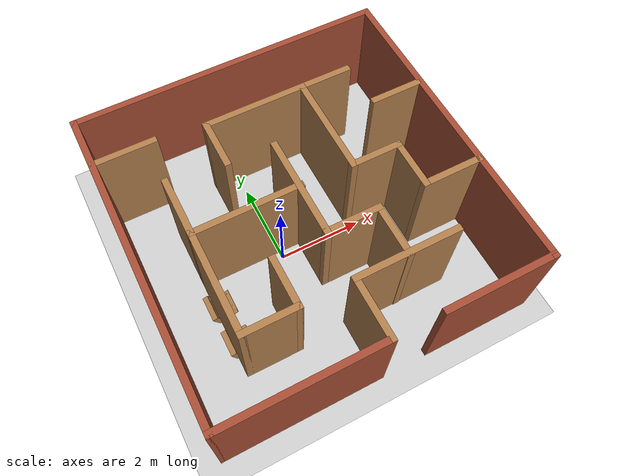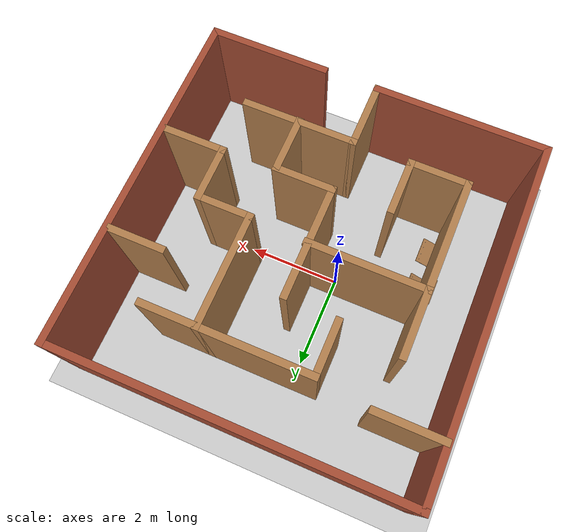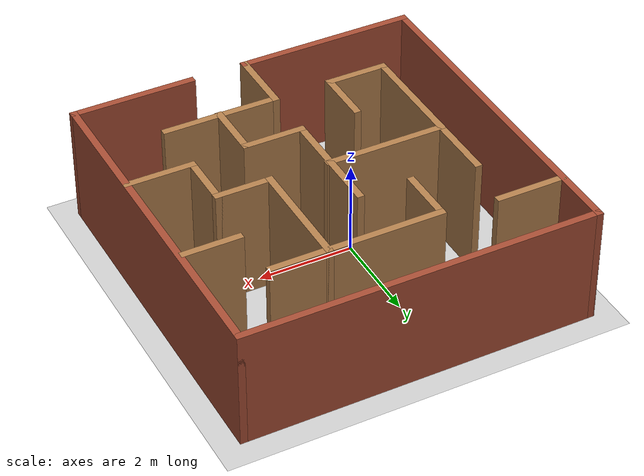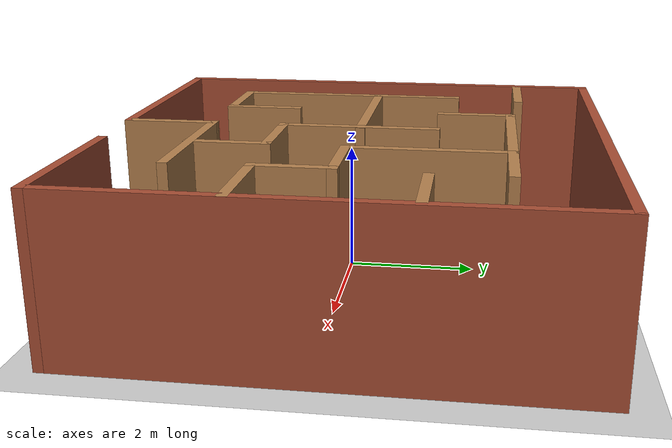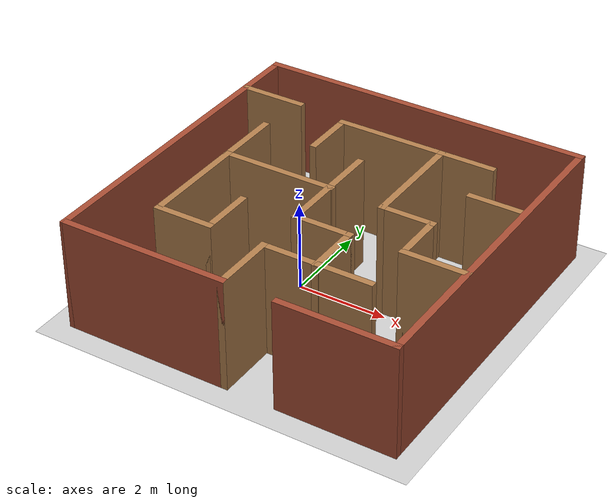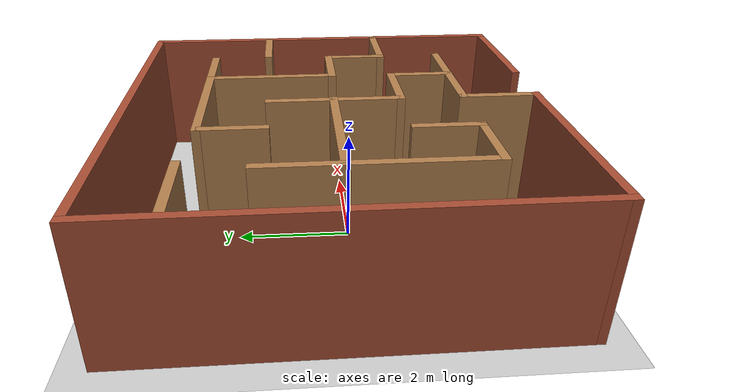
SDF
<sdf version="1.7">
 <world name="default">
  <light name="sun" type="directional">
   <pose>0 0 10 0 -0 0</pose>
   <diffuse>0.8 0.8 0.8 1</diffuse>
   <specular>0.2 0.2 0.2 1</specular>
   <attenuation>
    <range>1000</range>
    <constant>0.9</constant>
    <linear>0.01</linear>
    <quadratic>0.001</quadratic>
   </attenuation>
   <direction>-0.5 0.1 -0.9</direction>
   <spot><inner_angle>0</inner_angle><outer_angle>0</outer_angle><falloff>0</falloff></spot>
  </light>
  <model name="ground_plane">
   <static>1</static>
   <link name="link">
    <collision name="collision">
     <geometry><plane><normal>0 0 1</normal><size>100 100</size></plane></geometry>
     <surface><friction><ode><mu>100</mu><mu2>50</mu2></ode></friction></surface>
    </collision>
    <visual name="visual">
     <cast_shadows>0</cast_shadows>
     <geometry><plane><normal>0 0 1</normal><size>100 100</size></plane></geometry>
     <material>
      <script><uri>file://media/materials/scripts/gazebo.material</uri><name>Gazebo/Grey</name></script>
     </material>
    </visual>
   </link>
  </model>
  <gravity>0 0 -9.8</gravity>
  <magnetic_field>6e-06 2.3e-05 -4.2e-05</magnetic_field>
  <atmosphere type="adiabatic"/>
  <physics type="ode">
   <max_step_size>0.001</max_step_size>
   <real_time_factor>1</real_time_factor>
   <real_time_update_rate>1000</real_time_update_rate>
  </physics>
  <scene><ambient>0.4 0.4 0.4 1</ambient><background>0.7 0.7 0.7 1</background><shadows>1</shadows></scene>
  <audio><device>default</device></audio>
  <spherical_coordinates>
   <surface_model>EARTH_WGS84</surface_model>
   <latitude_deg>0</latitude_deg>
   <longitude_deg>0</longitude_deg>
   <elevation>0</elevation>
   <heading_deg>0</heading_deg>
  </spherical_coordinates>
  <model name="maze">
   <pose>0.591218 0.205771 0 0 -0 0</pose>
   <link name="Wall_10">
    <collision name="Wall_10_Collision">
     <geometry><box><size>1.5 0.15 2.5</size></box></geometry>
     <pose>0 0 1.25 0 -0 0</pose>
    </collision>
    <visual name="Wall_10_Visual">
     <pose>0 0 1.25 0 -0 0</pose>
     <geometry><box><size>1.5 0.15 2.5</size></box></geometry>
     <material>
      <script><uri>file://media/materials/scripts/gazebo.material</uri><name>Gazebo/Wood</name></script>
      <ambient>0.996078 0.47451 0.0196078 1</ambient>
     </material>
     <meta><layer>0</layer></meta>
    </visual>
    <pose>-0.025 -3 0 0 -0 1.5708</pose>
   </link>
   <link name="Wall_11">
    <collision name="Wall_11_Collision">
     <geometry><box><size>2.5 0.15 2.5</size></box></geometry>
     <pose>0 0 1.25 0 -0 0</pose>
    </collision>
    <visual name="Wall_11_Visual">
     <pose>0 0 1.25 0 -0 0</pose>
     <geometry><box><size>2.5 0.15 2.5</size></box></geometry>
     <material>
      <script><uri>file://media/materials/scripts/gazebo.material</uri><name>Gazebo/Wood</name></script>
      <ambient>0.996078 0.47451 0.0196078 1</ambient>
     </material>
     <meta><layer>0</layer></meta>
    </visual>
    <pose>1.15 -2.325 0 0 -0 0</pose>
   </link>
   <link name="Wall_14">
    <collision name="Wall_14_Collision">
     <geometry><box><size>1.30247 0.15 2.5</size></box></geometry>
     <pose>0 0 1.25 0 -0 0</pose>
    </collision>
    <visual name="Wall_14_Visual">
     <pose>0 0 1.25 0 -0 0</pose>
     <geometry><box><size>1.30247 0.15 2.5</size></box></geometry>
     <material>
      <script><uri>file://media/materials/scripts/gazebo.material</uri><name>Gazebo/Wood</name></script>
      <ambient>0.996078 0.47451 0.0196078 1</ambient>
     </material>
     <meta><layer>0</layer></meta>
    </visual>
    <pose>1.16975 -1.76535 0 0 -0 1.5708</pose>
   </link>
   <link name="Wall_15">
    <collision name="Wall_15_Collision">
     <geometry><box><size>1.35 0.15 2.5</size></box></geometry>
     <pose>0 0 1.25 0 -0 0</pose>
    </collision>
    <visual name="Wall_15_Visual">
     <pose>0 0 1.25 0 -0 0</pose>
     <geometry><box><size>1.35 0.15 2.5</size></box></geometry>
     <material>
      <script><uri>file://media/materials/scripts/gazebo.material</uri><name>Gazebo/Wood</name></script>
      <ambient>0.996078 0.47451 0.0196078 1</ambient>
     </material>
     <meta><layer>0</layer></meta>
    </visual>
    <pose>0.569747 -1.18911 0 0 -0 3.14159</pose>
   </link>
   <link name="Wall_17">
    <collision name="Wall_17_Collision">
     <geometry><box><size>2.5 0.15 2.5</size></box></geometry>
     <pose>0 0 1.25 0 -0 0</pose>
    </collision>
    <visual name="Wall_17_Visual">
     <pose>0 0 1.25 0 -0 0</pose>
     <geometry><box><size>2.5 0.15 2.5</size></box></geometry>
     <material>
      <script><uri>file://media/materials/scripts/gazebo.material</uri><name>Gazebo/Wood</name></script>
      <ambient>0.996078 0.47451 0.0196078 1</ambient>
     </material>
     <meta><layer>0</layer></meta>
    </visual>
    <pose>-0.030253 -0.014111 0 0 -0 1.5708</pose>
   </link>
   <link name="Wall_19">
    <collision name="Wall_19_Collision">
     <geometry><box><size>2.6 0.15 2.5</size></box></geometry>
     <pose>0 0 1.25 0 -0 0</pose>
    </collision>
    <visual name="Wall_19_Visual">
     <pose>0 0 1.25 0 -0 0</pose>
     <geometry><box><size>2.6 0.15 2.5</size></box></geometry>
     <material>
      <script><uri>file://media/materials/scripts/gazebo.material</uri><name>Gazebo/Wood</name></script>
      <ambient>0.996078 0.47451 0.0196078 1</ambient>
     </material>
     <meta><layer>0</layer></meta>
    </visual>
    <pose>-1.22709 0.019577 0 0 -0 3.14159</pose>
   </link>
   <link name="Wall_2">
    <collision name="Wall_2_Collision">
     <geometry><box><size>7.5 0.15 2.5</size></box></geometry>
     <pose>0 0 1.25 0 -0 0</pose>
    </collision>
    <visual name="Wall_2_Visual">
     <pose>0 0 1.25 0 -0 0</pose>
     <geometry><box><size>7.5 0.15 2.5</size></box></geometry>
     <material>
      <script><uri>file://media/materials/scripts/gazebo.material</uri><name>Gazebo/Bricks</name></script>
      <ambient>1 1 1 1</ambient>
     </material>
     <meta><layer>0</layer></meta>
    </visual>
    <pose>3.675 -0 0 0 -0 -1.5708</pose>
   </link>
   <link name="Wall_21">
    <collision name="Wall_21_Collision">
     <geometry><box><size>1.5 0.15 2.5</size></box></geometry>
     <pose>0 0 1.25 0 -0 0</pose>
    </collision>
    <visual name="Wall_21_Visual">
     <pose>0 0 1.25 0 -0 0</pose>
     <geometry><box><size>1.5 0.15 2.5</size></box></geometry>
     <material>
      <script><uri>file://media/materials/scripts/gazebo.material</uri><name>Gazebo/Wood</name></script>
      <ambient>0.996078 0.47451 0.0196078 1</ambient>
     </material>
     <meta><layer>0</layer></meta>
    </visual>
    <pose>-2.45209 0.694577 0 0 -0 1.5708</pose>
   </link>
   <link name="Wall_23">
    <collision name="Wall_23_Collision">
     <geometry><box><size>2.5 0.15 2.5</size></box></geometry>
     <pose>0 0 1.25 0 -0 0</pose>
    </collision>
    <visual name="Wall_23_Visual">
     <pose>0 0 1.25 0 -0 0</pose>
     <geometry><box><size>2.5 0.15 2.5</size></box></geometry>
     <material>
      <script><uri>file://media/materials/scripts/gazebo.material</uri><name>Gazebo/Wood</name></script>
      <ambient>0.996078 0.47451 0.0196078 1</ambient>
     </material>
     <meta><layer>0</layer></meta>
    </visual>
    <pose>-2.45209 -1.15542 0 0 -0 -1.5708</pose>
   </link>
   <link name="Wall_24">
    <collision name="Wall_24_Collision">
     <geometry><box><size>1.35 0.15 2.5</size></box></geometry>
     <pose>0 0 1.25 0 -0 0</pose>
    </collision>
    <visual name="Wall_24_Visual">
     <pose>0 0 1.25 0 -0 0</pose>
     <geometry><box><size>1.35 0.15 2.5</size></box></geometry>
     <material>
      <script><uri>file://media/materials/scripts/gazebo.material</uri><name>Gazebo/Wood</name></script>
      <ambient>0.996078 0.47451 0.0196078 1</ambient>
     </material>
     <meta><layer>0</layer></meta>
    </visual>
    <pose>-1.85209 -2.33042 0 0 -0 0</pose>
   </link>
   <link name="Wall_26">
    <collision name="Wall_26_Collision">
     <geometry><box><size>1.25 0.15 2.5</size></box></geometry>
     <pose>0 0 1.25 0 -0 0</pose>
    </collision>
    <visual name="Wall_26_Visual">
     <pose>0 0 1.25 0 -0 0</pose>
     <geometry><box><size>1.25 0.15 2.5</size></box></geometry>
     <material>
      <script><uri>file://media/materials/scripts/gazebo.material</uri><name>Gazebo/Wood</name></script>
      <ambient>0.996078 0.47451 0.0196078 1</ambient>
     </material>
     <meta><layer>0</layer></meta>
    </visual>
    <pose>-1.25209 -1.78042 0 0 -0 1.5708</pose>
   </link>
   <link name="Wall_28">
    <collision name="Wall_28_Collision">
     <geometry><box><size>1.5 0.15 2.5</size></box></geometry>
     <pose>0 0 1.25 0 -0 0</pose>
    </collision>
    <visual name="Wall_28_Visual">
     <pose>0 0 1.25 0 -0 0</pose>
     <geometry><box><size>1.5 0.15 2.5</size></box></geometry>
     <material>
      <script><uri>file://media/materials/scripts/gazebo.material</uri><name>Gazebo/Wood</name></script>
      <ambient>0.996078 0.47451 0.0196078 1</ambient>
     </material>
     <meta><layer>0</layer></meta>
    </visual>
    <pose>2.99583 -1.13477 0 0 -0 3.14159</pose>
   </link>
   <link name="Wall_29">
    <collision name="Wall_29_Collision">
     <geometry><box><size>1.25 0.15 2.5</size></box></geometry>
     <pose>0 0 1.25 0 -0 0</pose>
    </collision>
    <visual name="Wall_29_Visual">
     <pose>0 0 1.25 0 -0 0</pose>
     <geometry><box><size>1.25 0.15 2.5</size></box></geometry>
     <material>
      <script><uri>file://media/materials/scripts/gazebo.material</uri><name>Gazebo/Wood</name></script>
      <ambient>0.996078 0.47451 0.0196078 1</ambient>
     </material>
     <meta><layer>0</layer></meta>
    </visual>
    <pose>2.32083 -0.584767 0 0 -0 1.5708</pose>
   </link>
   <link name="Wall_30">
    <collision name="Wall_30_Collision">
     <geometry><box><size>1.25 0.15 2.5</size></box></geometry>
     <pose>0 0 1.25 0 -0 0</pose>
    </collision>
    <visual name="Wall_30_Visual">
     <pose>0 0 1.25 0 -0 0</pose>
     <geometry><box><size>1.25 0.15 2.5</size></box></geometry>
     <material>
      <script><uri>file://media/materials/scripts/gazebo.material</uri><name>Gazebo/Wood</name></script>
      <ambient>0.996078 0.47451 0.0196078 1</ambient>
     </material>
     <meta><layer>0</layer></meta>
    </visual>
    <pose>1.77083 -0.034767 0 0 -0 3.14159</pose>
   </link>
   <link name="Wall_31">
    <collision name="Wall_31_Collision">
     <geometry><box><size>2.5 0.15 2.5</size></box></geometry>
     <pose>0 0 1.25 0 -0 0</pose>
    </collision>
    <visual name="Wall_31_Visual">
     <pose>0 0 1.25 0 -0 0</pose>
     <geometry><box><size>2.5 0.15 2.5</size></box></geometry>
     <material>
      <script><uri>file://media/materials/scripts/gazebo.material</uri><name>Gazebo/Wood</name></script>
      <ambient>0.996078 0.47451 0.0196078 1</ambient>
     </material>
     <meta><layer>0</layer></meta>
    </visual>
    <pose>1.22083 1.14023 0 0 -0 1.5708</pose>
   </link>
   <link name="Wall_32">
    <collision name="Wall_32_Collision">
     <geometry><box><size>2.5 0.15 2.5</size></box></geometry>
     <pose>0 0 1.25 0 -0 0</pose>
    </collision>
    <visual name="Wall_32_Visual">
     <pose>0 0 1.25 0 -0 0</pose>
     <geometry><box><size>2.5 0.15 2.5</size></box></geometry>
     <material>
      <script><uri>file://media/materials/scripts/gazebo.material</uri><name>Gazebo/Wood</name></script>
      <ambient>0.996078 0.47451 0.0196078 1</ambient>
     </material>
     <meta><layer>0</layer></meta>
    </visual>
    <pose>0.045826 2.31523 0 0 -0 3.14159</pose>
   </link>
   <link name="Wall_33">
    <collision name="Wall_33_Collision">
     <geometry><box><size>1.25 0.15 2.5</size></box></geometry>
     <pose>0 0 1.25 0 -0 0</pose>
    </collision>
    <visual name="Wall_33_Visual">
     <pose>0 0 1.25 0 -0 0</pose>
     <geometry><box><size>1.25 0.15 2.5</size></box></geometry>
     <material>
      <script><uri>file://media/materials/scripts/gazebo.material</uri><name>Gazebo/Wood</name></script>
      <ambient>0.996078 0.47451 0.0196078 1</ambient>
     </material>
     <meta><layer>0</layer></meta>
    </visual>
    <pose>-1.12917 1.76523 0 0 -0 -1.5708</pose>
   </link>
   <link name="Wall_37">
    <collision name="Wall_37_Collision">
     <geometry><box><size>1.5 0.15 2.5</size></box></geometry>
     <pose>0 0 1.25 0 -0 0</pose>
    </collision>
    <visual name="Wall_37_Visual">
     <pose>0 0 1.25 0 -0 0</pose>
     <geometry><box><size>1.5 0.15 2.5</size></box></geometry>
     <material>
      <script><uri>file://media/materials/scripts/gazebo.material</uri><name>Gazebo/Wood</name></script>
      <ambient>0.996078 0.47451 0.0196078 1</ambient>
     </material>
     <meta><layer>0</layer></meta>
    </visual>
    <pose>-2.96502 2.46819 0 0 -0 0</pose>
   </link>
   <link name="Wall_39">
    <collision name="Wall_39_Collision">
     <geometry><box><size>1.3 0.15 2.5</size></box></geometry>
     <pose>0 0 1.25 0 -0 0</pose>
    </collision>
    <visual name="Wall_39_Visual">
     <pose>0 0 1.25 0 -0 0</pose>
     <geometry><box><size>1.3 0.15 2.5</size></box></geometry>
     <material>
      <script><uri>file://media/materials/scripts/gazebo.material</uri><name>Gazebo/Wood</name></script>
      <ambient>0.996078 0.47451 0.0196078 1</ambient>
     </material>
     <meta><layer>0</layer></meta>
    </visual>
    <pose>1.79583 2.31523 0 0 -0 0</pose>
   </link>
   <link name="Wall_4">
    <collision name="Wall_4_Collision">
     <geometry><box><size>7.5 0.15 2.5</size></box></geometry>
     <pose>0 0 1.25 0 -0 0</pose>
    </collision>
    <visual name="Wall_4_Visual">
     <pose>0 0 1.25 0 -0 0</pose>
     <geometry><box><size>7.5 0.15 2.5</size></box></geometry>
     <material>
      <script><uri>file://media/materials/scripts/gazebo.material</uri><name>Gazebo/Bricks</name></script>
      <ambient>1 1 1 1</ambient>
     </material>
     <meta><layer>0</layer></meta>
    </visual>
    <pose>-3.675 -0 0 0 -0 1.5708</pose>
   </link>
   <link name="Wall_41">
    <collision name="Wall_41_Collision">
     <geometry><box><size>1.25 0.15 2.5</size></box></geometry>
     <pose>0 0 1.25 0 -0 0</pose>
    </collision>
    <visual name="Wall_41_Visual">
     <pose>0 0 1.25 0 -0 0</pose>
     <geometry><box><size>1.25 0.15 2.5</size></box></geometry>
     <material>
      <script><uri>file://media/materials/scripts/gazebo.material</uri><name>Gazebo/Wood</name></script>
      <ambient>0.996078 0.47451 0.0196078 1</ambient>
     </material>
     <meta><layer>0</layer></meta>
    </visual>
    <pose>3.03338 1.22639 0 0 -0 3.14159</pose>
   </link>
   <link name="Wall_47">
    <collision name="Wall_47_Collision">
     <geometry><box><size>7.5 0.15 2.5</size></box></geometry>
     <pose>0 0 1.25 0 -0 0</pose>
    </collision>
    <visual name="Wall_47_Visual">
     <pose>0 0 1.25 0 -0 0</pose>
     <geometry><box><size>7.5 0.15 2.5</size></box></geometry>
     <material>
      <script><uri>file://media/materials/scripts/gazebo.material</uri><name>Gazebo/Bricks</name></script>
      <ambient>1 1 1 1</ambient>
     </material>
     <meta><layer>0</layer></meta>
    </visual>
    <pose>0 3.675 0 0 -0 0</pose>
   </link>
   <link name="Wall_6">
    <collision name="Wall_6_Collision">
     <geometry><box><size>3.8 0.15 2.5</size></box></geometry>
     <pose>0 0 1.25 0 -0 0</pose>
    </collision>
    <visual name="Wall_6_Visual">
     <pose>0 0 1.25 0 -0 0</pose>
     <geometry><box><size>3.8 0.15 2.5</size></box></geometry>
     <material>
      <script><uri>file://media/materials/scripts/gazebo.material</uri><name>Gazebo/Bricks</name></script>
      <ambient>1 1 1 1</ambient>
     </material>
     <meta><layer>0</layer></meta>
    </visual>
    <pose>-1.85 -3.675 0 0 -0 0</pose>
   </link>
   <link name="Wall_8">
    <collision name="Wall_8_Collision">
     <geometry><box><size>2.65 0.15 2.5</size></box></geometry>
     <pose>0 0 1.25 0 -0 0</pose>
    </collision>
    <visual name="Wall_8_Visual">
     <pose>0 0 1.25 0 -0 0</pose>
     <geometry><box><size>2.65 0.15 2.5</size></box></geometry>
     <material>
      <script><uri>file://media/materials/scripts/gazebo.material</uri><name>Gazebo/Bricks</name></script>
      <ambient>1 1 1 1</ambient>
     </material>
     <meta><layer>0</layer></meta>
    </visual>
    <pose>2.425 -3.675 0 0 -0 3.14159</pose>
   </link>
   <static>1</static>
  </model>
  <model name="wooden_case">
   <link name="base">
    <pose>0 0 0.024 0 -0 0</pose>
    <inertial>
     <pose>-0.022184 0 0.171592 0 -0 0</pose>
     <mass>3.96264</mass>
     <inertia>
      <ixx>0.213536</ixx>
      <ixy>0</ixy>
      <ixz>0.000779377</ixz>
      <iyy>0.0708943</iyy>
      <iyz>0</iyz>
      <izz>0.154604</izz>
     </inertia>
    </inertial>
    <collision name="collision_back">
     <pose>-0.053975 0 0.1778 0 -0 0</pose>
     <geometry><box><size>0.01905 0.5461 0.3175</size></box></geometry>
     <surface>
      <contact>
       <poissons_ratio>0.347</poissons_ratio>
       <elastic_modulus>8.8e+09</elastic_modulus>
       <ode><kp>100000</kp><kd>100</kd><max_vel>100</max_vel><min_depth>0.001</min_depth></ode>
      </contact>
      <friction>
       <torsional>
        <coefficient>1</coefficient>
        <use_patch_radius>0</use_patch_radius>
        <surface_radius>0.01</surface_radius>
       </torsional>
      </friction>
     </surface>
    </collision>
    <visual name="visual_back">
     <pose>-0.053975 0 0.1778 0 -0 0</pose>
     <geometry><box><size>0.01905 0.5461 0.3175</size></box></geometry>
     <material>
      <script><uri>file://media/materials/scripts/gazebo.material</uri><name>Gazebo/Wood</name></script>
     </material>
    </visual>
    <collision name="collision_bottom">
     <pose>0 0 0.009525 0 -0 0</pose>
     <geometry><box><size>0.127 0.5842 0.01905</size></box></geometry>
     <surface>
      <contact>
       <poissons_ratio>0.347</poissons_ratio>
       <elastic_modulus>8.8e+09</elastic_modulus>
       <ode><kp>100000</kp><kd>100</kd><max_vel>100</max_vel><min_depth>0.001</min_depth></ode>
      </contact>
      <friction>
       <torsional>
        <coefficient>1</coefficient>
        <use_patch_radius>0</use_patch_radius>
        <surface_radius>0.01</surface_radius>
       </torsional>
      </friction>
     </surface>
    </collision>
    <visual name="visual_bottom">
     <pose>0 0 0.009525 0 -0 0</pose>
     <geometry><box><size>0.127 0.5842 0.01905</size></box></geometry>
     <material>
      <script><uri>file://media/materials/scripts/gazebo.material</uri><name>Gazebo/Wood</name></script>
     </material>
    </visual>
    <collision name="collision_top">
     <pose>0 0 0.346075 0 -0 0</pose>
     <geometry><box><size>0.127 0.5842 0.01905</size></box></geometry>
     <surface>
      <contact>
       <poissons_ratio>0.347</poissons_ratio>
       <elastic_modulus>8.8e+09</elastic_modulus>
       <ode><kp>100000</kp><kd>100</kd><max_vel>100</max_vel><min_depth>0.001</min_depth></ode>
      </contact>
      <friction>
       <torsional>
        <coefficient>1</coefficient>
        <use_patch_radius>0</use_patch_radius>
        <surface_radius>0.01</surface_radius>
       </torsional>
      </friction>
     </surface>
    </collision>
    <visual name="visual_top">
     <pose>0 0 0.346075 0 -0 0</pose>
     <geometry><box><size>0.127 0.5842 0.01905</size></box></geometry>
     <material>
      <script><uri>file://media/materials/scripts/gazebo.material</uri><name>Gazebo/Wood</name></script>
     </material>
    </visual>
    <collision name="collision_left">
     <pose>0 -0.282575 0.1778 0 -0 0</pose>
     <geometry><box><size>0.127 0.01905 0.3175</size></box></geometry>
     <surface>
      <contact>
       <poissons_ratio>0.347</poissons_ratio>
       <elastic_modulus>8.8e+09</elastic_modulus>
       <ode><kp>100000</kp><kd>100</kd><max_vel>100</max_vel><min_depth>0.001</min_depth></ode>
      </contact>
      <friction>
       <torsional>
        <coefficient>1</coefficient>
        <use_patch_radius>0</use_patch_radius>
        <surface_radius>0.01</surface_radius>
       </torsional>
      </friction>
     </surface>
    </collision>
    <visual name="visual_left">
     <pose>0 -0.282575 0.1778 0 -0 0</pose>
     <geometry><box><size>0.127 0.01905 0.3175</size></box></geometry>
     <material>
      <script><uri>file://media/materials/scripts/gazebo.material</uri><name>Gazebo/Wood</name></script>
     </material>
    </visual>
    <collision name="collision_right">
     <pose>0 0.282575 0.1778 0 -0 0</pose>
     <geometry><box><size>0.127 0.01905 0.3175</size></box></geometry>
     <surface>
      <contact>
       <poissons_ratio>0.347</poissons_ratio>
       <elastic_modulus>8.8e+09</elastic_modulus>
       <ode><kp>100000</kp><kd>100</kd><max_vel>100</max_vel><min_depth>0.001</min_depth></ode>
      </contact>
      <friction>
       <torsional>
        <coefficient>1</coefficient>
        <use_patch_radius>0</use_patch_radius>
        <surface_radius>0.01</surface_radius>
       </torsional>
      </friction>
     </surface>
    </collision>
    <visual name="visual_right">
     <pose>0 0.282575 0.1778 0 -0 0</pose>
     <geometry><box><size>0.127 0.01905 0.3175</size></box></geometry>
     <material>
      <script><uri>file://media/materials/scripts/gazebo.material</uri><name>Gazebo/Wood</name></script>
     </material>
    </visual>
    <collision name="collision_block_left">
     <pose>0.0095 -0.2151 -0.012 0 -0 0</pose>
     <geometry><box><size>0.108 0.05 0.024</size></box></geometry>
     <surface>
      <contact>
       <poissons_ratio>0.347</poissons_ratio>
       <elastic_modulus>8.8e+09</elastic_modulus>
       <ode><kp>100000</kp><kd>100</kd><max_vel>100</max_vel><min_depth>0.001</min_depth></ode>
      </contact>
      <friction>
       <torsional>
        <coefficient>1</coefficient>
        <use_patch_radius>0</use_patch_radius>
        <surface_radius>0.01</surface_radius>
       </torsional>
      </friction>
     </surface>
    </collision>
    <visual name="visual_block_left">
     <pose>0.0095 -0.2151 -0.012 0 -0 0</pose>
     <geometry><box><size>0.108 0.05 0.024</size></box></geometry>
     <material>
      <script><uri>file://media/materials/scripts/gazebo.material</uri><name>Gazebo/Wood</name></script>
     </material>
    </visual>
    <collision name="collision_block_right">
     <pose>0.0095 0.2151 -0.012 0 -0 0</pose>
     <geometry><box><size>0.108 0.05 0.024</size></box></geometry>
     <surface>
      <contact>
       <poissons_ratio>0.347</poissons_ratio>
       <elastic_modulus>8.8e+09</elastic_modulus>
       <ode><kp>100000</kp><kd>100</kd><max_vel>100</max_vel><min_depth>0.001</min_depth></ode>
      </contact>
      <friction>
       <torsional>
        <coefficient>1</coefficient>
        <use_patch_radius>0</use_patch_radius>
        <surface_radius>0.01</surface_radius>
       </torsional>
      </friction>
     </surface>
    </collision>
    <visual name="visual_block_right">
     <pose>0.0095 0.2151 -0.012 0 -0 0</pose>
     <geometry><box><size>0.108 0.05 0.024</size></box></geometry>
     <material>
      <script><uri>file://media/materials/scripts/gazebo.material</uri><name>Gazebo/Wood</name></script>
     </material>
    </visual>
   </link>
   <link name="lid">
    <pose>0.243775 0 0.009525 0 -0 0</pose>
    <inertial>
     <mass>1.97874</mass>
     <inertia>
      <ixx>0.0563367</ixx>
      <ixy>0</ixy>
      <ixz>0</ixz>
      <iyy>0.020911</iyy>
      <iyz>0</iyz>
      <izz>0.0771281</izz>
     </inertia>
    </inertial>
    <collision name="collision">
     <geometry><box><size>0.3556 0.5842 0.01905</size></box></geometry>
     <surface>
      <contact>
       <poissons_ratio>0.347</poissons_ratio>
       <elastic_modulus>8.8e+09</elastic_modulus>
       <ode><kp>100000</kp><kd>100</kd><max_vel>100</max_vel><min_depth>0.001</min_depth></ode>
      </contact>
      <friction>
       <torsional>
        <coefficient>1</coefficient>
        <use_patch_radius>0</use_patch_radius>
        <surface_radius>0.01</surface_radius>
       </torsional>
      </friction>
     </surface>
    </collision>
    <visual name="visual">
     <geometry><box><size>0.3556 0.5842 0.01905</size></box></geometry>
     <material>
      <script><uri>file://media/materials/scripts/gazebo.material</uri><name>Gazebo/Wood</name></script>
     </material>
    </visual>
    <visual name="tee_nut_1">
     <pose>0.122 -0.216 0 0 -0 0</pose>
     <geometry><cylinder><radius>0.00635</radius><length>0.0192405</length></cylinder></geometry>
     <material>
      <script><uri>file://media/materials/scripts/gazebo.material</uri><name>Gazebo/Grey</name></script>
     </material>
    </visual>
    <visual name="tee_nut_2">
     <pose>0.122 -0.088 0 0 -0 0</pose>
     <geometry><cylinder><radius>0.00635</radius><length>0.0192405</length></cylinder></geometry>
     <material>
      <script><uri>file://media/materials/scripts/gazebo.material</uri><name>Gazebo/Grey</name></script>
     </material>
    </visual>
    <visual name="tee_nut_3">
     <pose>0.122 0.088 0 0 -0 0</pose>
     <geometry><cylinder><radius>0.00635</radius><length>0.0192405</length></cylinder></geometry>
     <material>
      <script><uri>file://media/materials/scripts/gazebo.material</uri><name>Gazebo/Grey</name></script>
     </material>
    </visual>
    <visual name="tee_nut_4">
     <pose>0.122 0.216 0 0 -0 0</pose>
     <geometry><cylinder><radius>0.00635</radius><length>0.0192405</length></cylinder></geometry>
     <material>
      <script><uri>file://media/materials/scripts/gazebo.material</uri><name>Gazebo/Grey</name></script>
     </material>
    </visual>
   </link>
   <joint name="lid_hinge" type="revolute">
    <pose>-0.1778 0 0.01905 0 -0 0</pose>
    <parent>base</parent>
    <child>lid</child>
    <axis>
     <xyz>0 1 0</xyz>
     <limit><upper>0.523599</upper><lower>-1.5708</lower></limit>
     <dynamics><spring_reference>0</spring_reference><spring_stiffness>0</spring_stiffness></dynamics>
    </axis>
   </joint>
   <pose>-1.89487 -1.43787 -0.016304 0.000242 -0.327019 -0.000121</pose>
  </model>
  <model name="wooden_case_metal_peg">
   <frame name="wooden_case::__model__" attached_to="wooden_case::base">
    <pose relative_to="__model__">0 0 0 0 -0 0</pose>
   </frame>
   <link name="wooden_case::base">
    <pose relative_to="wooden_case::__model__">0 0 0.024 0 -0 0</pose>
    <inertial>
     <pose>-0.022184 0 0.171592 0 -0 0</pose>
     <mass>3.96264</mass>
     <inertia>
      <ixx>0.213536</ixx>
      <ixy>0</ixy>
      <ixz>0.000779377</ixz>
      <iyy>0.0708943</iyy>
      <iyz>0</iyz>
      <izz>0.154604</izz>
     </inertia>
    </inertial>
    <collision name="collision_back">
     <pose>-0.053975 0 0.1778 0 -0 0</pose>
     <geometry><box><size>0.01905 0.5461 0.3175</size></box></geometry>
     <surface>
      <contact>
       <poissons_ratio>0.347</poissons_ratio>
       <elastic_modulus>8.8e+09</elastic_modulus>
       <ode><kp>100000</kp><kd>100</kd><max_vel>100</max_vel><min_depth>0.001</min_depth></ode>
      </contact>
      <friction>
       <torsional>
        <coefficient>1</coefficient>
        <use_patch_radius>0</use_patch_radius>
        <surface_radius>0.01</surface_radius>
       </torsional>
      </friction>
     </surface>
    </collision>
    <visual name="visual_back">
     <pose>-0.053975 0 0.1778 0 -0 0</pose>
     <geometry><box><size>0.01905 0.5461 0.3175</size></box></geometry>
     <material>
      <script><uri>file://media/materials/scripts/gazebo.material</uri><name>Gazebo/Wood</name></script>
     </material>
    </visual>
    <collision name="collision_bottom">
     <pose>0 0 0.009525 0 -0 0</pose>
     <geometry><box><size>0.127 0.5842 0.01905</size></box></geometry>
     <surface>
      <contact>
       <poissons_ratio>0.347</poissons_ratio>
       <elastic_modulus>8.8e+09</elastic_modulus>
       <ode><kp>100000</kp><kd>100</kd><max_vel>100</max_vel><min_depth>0.001</min_depth></ode>
      </contact>
      <friction>
       <torsional>
        <coefficient>1</coefficient>
        <use_patch_radius>0</use_patch_radius>
        <surface_radius>0.01</surface_radius>
       </torsional>
      </friction>
     </surface>
    </collision>
    <visual name="visual_bottom">
     <pose>0 0 0.009525 0 -0 0</pose>
     <geometry><box><size>0.127 0.5842 0.01905</size></box></geometry>
     <material>
      <script><uri>file://media/materials/scripts/gazebo.material</uri><name>Gazebo/Wood</name></script>
     </material>
    </visual>
    <collision name="collision_top">
     <pose>0 0 0.346075 0 -0 0</pose>
     <geometry><box><size>0.127 0.5842 0.01905</size></box></geometry>
     <surface>
      <contact>
       <poissons_ratio>0.347</poissons_ratio>
       <elastic_modulus>8.8e+09</elastic_modulus>
       <ode><kp>100000</kp><kd>100</kd><max_vel>100</max_vel><min_depth>0.001</min_depth></ode>
      </contact>
      <friction>
       <torsional>
        <coefficient>1</coefficient>
        <use_patch_radius>0</use_patch_radius>
        <surface_radius>0.01</surface_radius>
       </torsional>
      </friction>
     </surface>
    </collision>
    <visual name="visual_top">
     <pose>0 0 0.346075 0 -0 0</pose>
     <geometry><box><size>0.127 0.5842 0.01905</size></box></geometry>
     <material>
      <script><uri>file://media/materials/scripts/gazebo.material</uri><name>Gazebo/Wood</name></script>
     </material>
    </visual>
    <collision name="collision_left">
     <pose>0 -0.282575 0.1778 0 -0 0</pose>
     <geometry><box><size>0.127 0.01905 0.3175</size></box></geometry>
     <surface>
      <contact>
       <poissons_ratio>0.347</poissons_ratio>
       <elastic_modulus>8.8e+09</elastic_modulus>
       <ode><kp>100000</kp><kd>100</kd><max_vel>100</max_vel><min_depth>0.001</min_depth></ode>
      </contact>
      <friction>
       <torsional>
        <coefficient>1</coefficient>
        <use_patch_radius>0</use_patch_radius>
        <surface_radius>0.01</surface_radius>
       </torsional>
      </friction>
     </surface>
    </collision>
    <visual name="visual_left">
     <pose>0 -0.282575 0.1778 0 -0 0</pose>
     <geometry><box><size>0.127 0.01905 0.3175</size></box></geometry>
     <material>
      <script><uri>file://media/materials/scripts/gazebo.material</uri><name>Gazebo/Wood</name></script>
     </material>
    </visual>
    <collision name="collision_right">
     <pose>0 0.282575 0.1778 0 -0 0</pose>
     <geometry><box><size>0.127 0.01905 0.3175</size></box></geometry>
     <surface>
      <contact>
       <poissons_ratio>0.347</poissons_ratio>
       <elastic_modulus>8.8e+09</elastic_modulus>
       <ode><kp>100000</kp><kd>100</kd><max_vel>100</max_vel><min_depth>0.001</min_depth></ode>
      </contact>
      <friction>
       <torsional>
        <coefficient>1</coefficient>
        <use_patch_radius>0</use_patch_radius>
        <surface_radius>0.01</surface_radius>
       </torsional>
      </friction>
     </surface>
    </collision>
    <visual name="visual_right">
     <pose>0 0.282575 0.1778 0 -0 0</pose>
     <geometry><box><size>0.127 0.01905 0.3175</size></box></geometry>
     <material>
      <script><uri>file://media/materials/scripts/gazebo.material</uri><name>Gazebo/Wood</name></script>
     </material>
    </visual>
    <collision name="collision_block_left">
     <pose>0.0095 -0.2151 -0.012 0 -0 0</pose>
     <geometry><box><size>0.108 0.05 0.024</size></box></geometry>
     <surface>
      <contact>
       <poissons_ratio>0.347</poissons_ratio>
       <elastic_modulus>8.8e+09</elastic_modulus>
       <ode><kp>100000</kp><kd>100</kd><max_vel>100</max_vel><min_depth>0.001</min_depth></ode>
      </contact>
      <friction>
       <torsional>
        <coefficient>1</coefficient>
        <use_patch_radius>0</use_patch_radius>
        <surface_radius>0.01</surface_radius>
       </torsional>
      </friction>
     </surface>
    </collision>
    <visual name="visual_block_left">
     <pose>0.0095 -0.2151 -0.012 0 -0 0</pose>
     <geometry><box><size>0.108 0.05 0.024</size></box></geometry>
     <material>
      <script><uri>file://media/materials/scripts/gazebo.material</uri><name>Gazebo/Wood</name></script>
     </material>
    </visual>
    <collision name="collision_block_right">
     <pose>0.0095 0.2151 -0.012 0 -0 0</pose>
     <geometry><box><size>0.108 0.05 0.024</size></box></geometry>
     <surface>
      <contact>
       <poissons_ratio>0.347</poissons_ratio>
       <elastic_modulus>8.8e+09</elastic_modulus>
       <ode><kp>100000</kp><kd>100</kd><max_vel>100</max_vel><min_depth>0.001</min_depth></ode>
      </contact>
      <friction>
       <torsional>
        <coefficient>1</coefficient>
        <use_patch_radius>0</use_patch_radius>
        <surface_radius>0.01</surface_radius>
       </torsional>
      </friction>
     </surface>
    </collision>
    <visual name="visual_block_right">
     <pose>0.0095 0.2151 -0.012 0 -0 0</pose>
     <geometry><box><size>0.108 0.05 0.024</size></box></geometry>
     <material>
      <script><uri>file://media/materials/scripts/gazebo.material</uri><name>Gazebo/Wood</name></script>
     </material>
    </visual>
   </link>
   <link name="wooden_case::lid">
    <pose relative_to="wooden_case::__model__">0.243775 0 0.009525 0 -0 0</pose>
    <inertial>
     <mass>1.97874</mass>
     <inertia>
      <ixx>0.0563367</ixx>
      <ixy>0</ixy>
      <ixz>0</ixz>
      <iyy>0.020911</iyy>
      <iyz>0</iyz>
      <izz>0.0771281</izz>
     </inertia>
    </inertial>
    <collision name="collision">
     <geometry><box><size>0.3556 0.5842 0.01905</size></box></geometry>
     <surface>
      <contact>
       <poissons_ratio>0.347</poissons_ratio>
       <elastic_modulus>8.8e+09</elastic_modulus>
       <ode><kp>100000</kp><kd>100</kd><max_vel>100</max_vel><min_depth>0.001</min_depth></ode>
      </contact>
      <friction>
       <torsional>
        <coefficient>1</coefficient>
        <use_patch_radius>0</use_patch_radius>
        <surface_radius>0.01</surface_radius>
       </torsional>
      </friction>
     </surface>
    </collision>
    <visual name="visual">
     <geometry><box><size>0.3556 0.5842 0.01905</size></box></geometry>
     <material>
      <script><uri>file://media/materials/scripts/gazebo.material</uri><name>Gazebo/Wood</name></script>
     </material>
    </visual>
    <visual name="tee_nut_1">
     <pose>0.122 -0.216 0 0 -0 0</pose>
     <geometry><cylinder><radius>0.00635</radius><length>0.0192405</length></cylinder></geometry>
     <material>
      <script><uri>file://media/materials/scripts/gazebo.material</uri><name>Gazebo/Grey</name></script>
     </material>
    </visual>
    <visual name="tee_nut_2">
     <pose>0.122 -0.088 0 0 -0 0</pose>
     <geometry><cylinder><radius>0.00635</radius><length>0.0192405</length></cylinder></geometry>
     <material>
      <script><uri>file://media/materials/scripts/gazebo.material</uri><name>Gazebo/Grey</name></script>
     </material>
    </visual>
    <visual name="tee_nut_3">
     <pose>0.122 0.088 0 0 -0 0</pose>
     <geometry><cylinder><radius>0.00635</radius><length>0.0192405</length></cylinder></geometry>
     <material>
      <script><uri>file://media/materials/scripts/gazebo.material</uri><name>Gazebo/Grey</name></script>
     </material>
    </visual>
    <visual name="tee_nut_4">
     <pose>0.122 0.216 0 0 -0 0</pose>
     <geometry><cylinder><radius>0.00635</radius><length>0.0192405</length></cylinder></geometry>
     <material>
      <script><uri>file://media/materials/scripts/gazebo.material</uri><name>Gazebo/Grey</name></script>
     </material>
    </visual>
   </link>
   <joint name="wooden_case::lid_hinge" type="revolute">
    <pose>-0.1778 0 0.01905 0 -0 0</pose>
    <parent>wooden_case::base</parent>
    <child>wooden_case::lid</child>
    <axis>
     <xyz>0 1 0</xyz>
     <limit><upper>0.523599</upper><lower>-1.5708</lower></limit>
     <dynamics><spring_reference>0</spring_reference><spring_stiffness>0</spring_stiffness></dynamics>
    </axis>
   </joint>
   <frame name="peg::__model__" attached_to="peg::link">
    <pose relative_to="__model__">0.365774 0.216 0.01905 0 -0 0</pose>
   </frame>
   <link name="peg::link">
    <pose relative_to="peg::__model__">0 0 0.031 0 -0 0</pose>
    <inertial>
     <mass>0.0121</mass>
     <inertia>
      <ixx>3.90898e-06</ixx>
      <ixy>0</ixy>
      <ixz>0</ixz>
      <iyy>3.90898e-06</iyy>
      <iyz>0</iyz>
      <izz>6.58845e-08</izz>
     </inertia>
    </inertial>
    <collision name="collision">
     <geometry><cylinder><radius>0.0033</radius><length>0.062</length></cylinder></geometry>
     <surface>
      <contact>
       <poissons_ratio>0.305</poissons_ratio>
       <elastic_modulus>2e+11</elastic_modulus>
       <ode><kp>100000</kp><kd>100</kd><max_vel>100</max_vel><min_depth>0.001</min_depth></ode>
      </contact>
      <friction>
       <torsional>
        <coefficient>1</coefficient>
        <use_patch_radius>0</use_patch_radius>
        <surface_radius>0.01</surface_radius>
       </torsional>
      </friction>
     </surface>
    </collision>
    <visual name="visual">
     <geometry><cylinder><radius>0.0033</radius><length>0.062</length></cylinder></geometry>
     <material>
      <script><uri>file://media/materials/scripts/gazebo.material</uri><name>Gazebo/Grey</name></script>
     </material>
    </visual>
   </link>
   <joint name="case_peg" type="revolute">
    <child>peg::link</child>
    <parent>wooden_case::lid</parent>
    <axis>
     <xyz>0 0 1</xyz>
     <limit><upper>0</upper><lower>0</lower></limit>
     <dynamics><spring_reference>0</spring_reference><spring_stiffness>0</spring_stiffness></dynamics>
    </axis>
   </joint>
   <pose>-1.89145 -0.524524 -0.01397 0.003761 -0.430889 -0.002295</pose>
  </model>
 </world>
</sdf>
